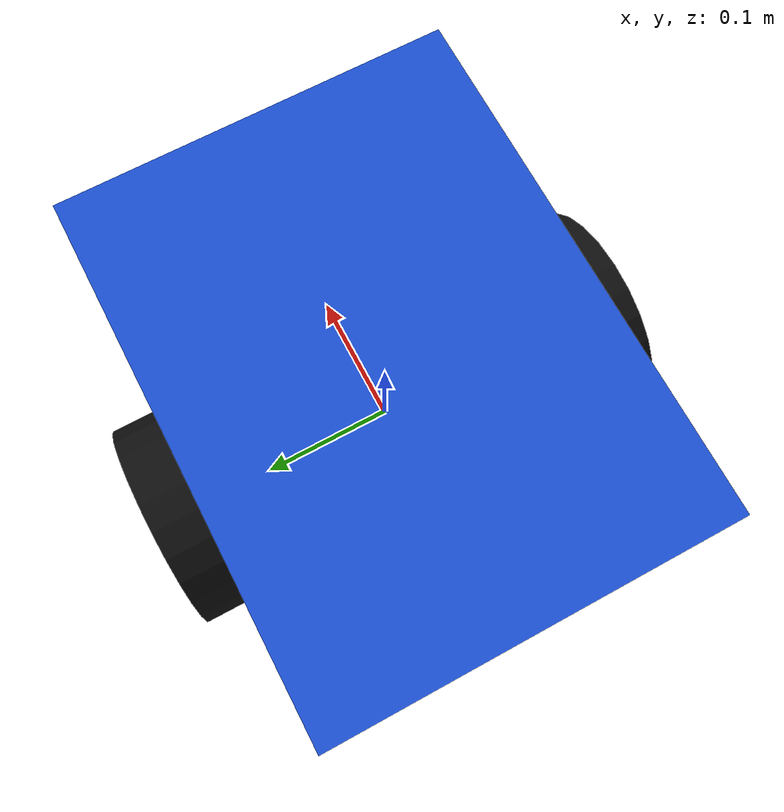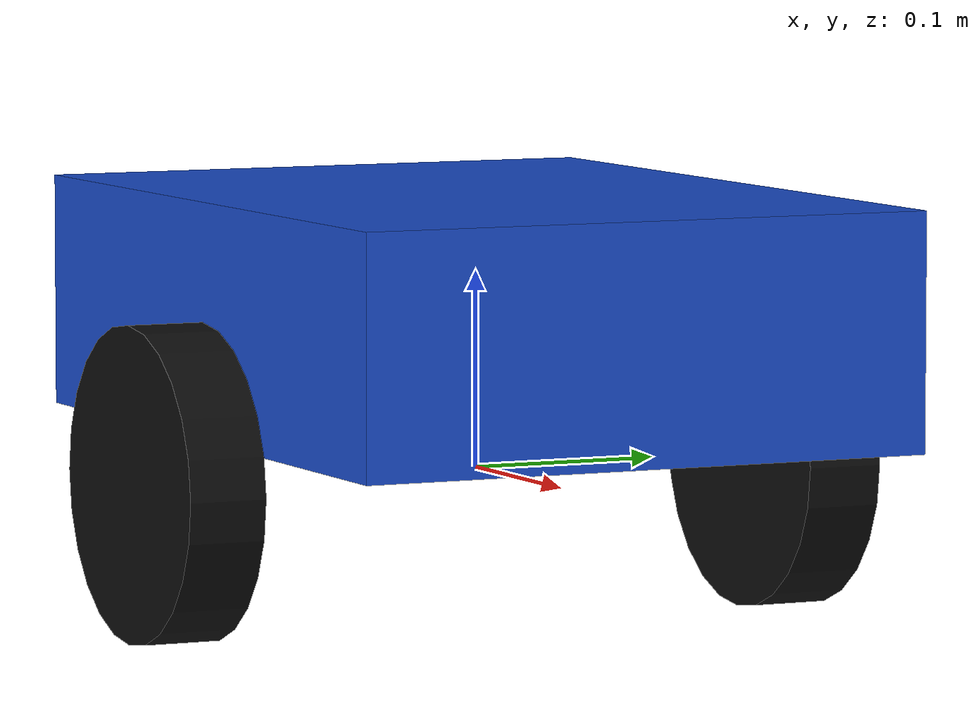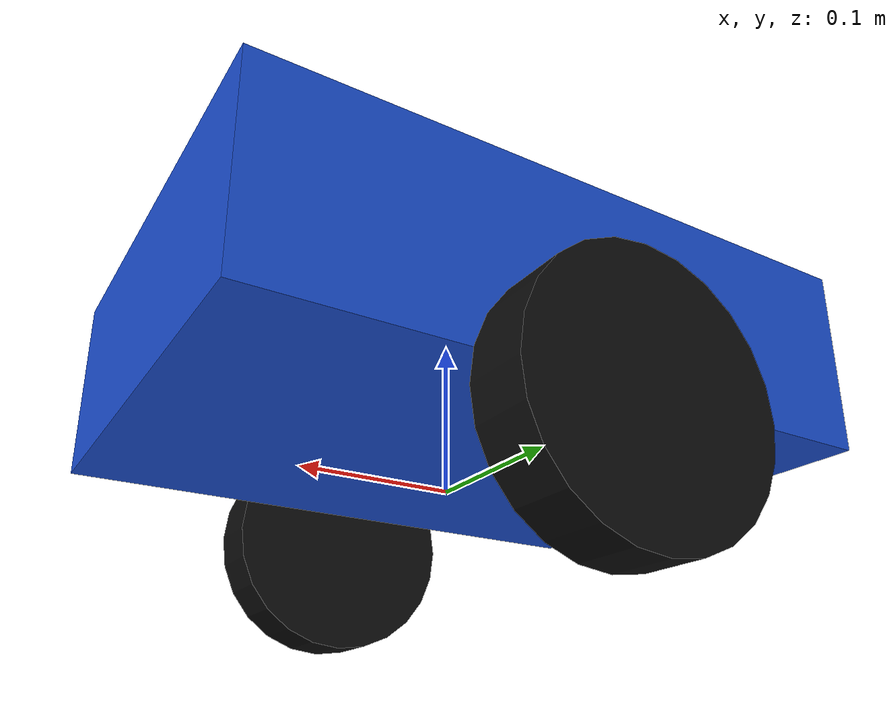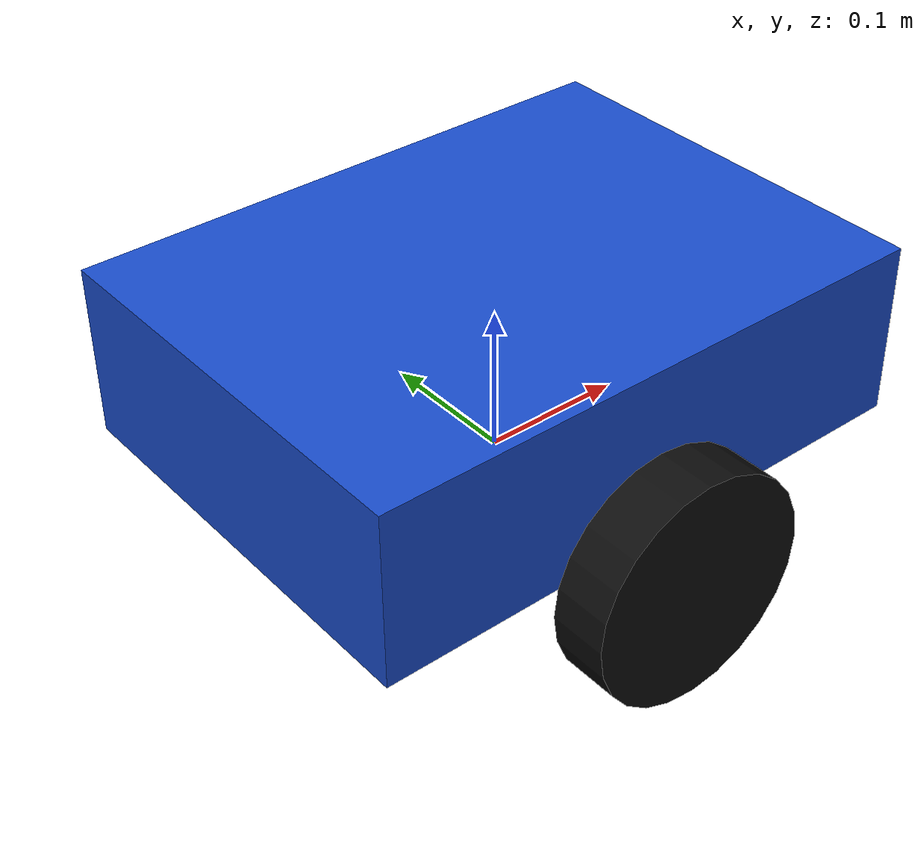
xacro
<?xml version="1.0"?>
<robot xmlns:xacro="http://www.ros.org/wiki/xacro" name="small_robot">

  <xacro:property name="body_length" value="0.40"/>
  <xacro:property name="body_width" value="0.30"/>
  <xacro:property name="body_height" value="0.12"/>
  <xacro:property name="wheel_radius" value="0.08"/>
  <xacro:property name="wheel_width" value="0.04"/>
  <xacro:property name="wheel_separation" value="0.34"/>

  <link name="base_link">
    <visual>
      <origin xyz="0 0 ${wheel_radius}"/>
      <geometry>
        <box size="${body_length} ${body_width} ${body_height}"/>
      </geometry>
      <material name="blue">
        <color rgba="0.1 0.3 0.8 1.0"/>
      </material>
    </visual>

    <collision>
      <origin xyz="0 0 ${wheel_radius}"/>
      <geometry>
        <box size="${body_length} ${body_width} ${body_height}"/>
      </geometry>
    </collision>

    <!-- Placeholder mass properties: visualisation only. -->
    <inertial>
      <mass value="5.0"/>
      <inertia ixx="0.05" ixy="0.0" ixz="0.0"
               iyy="0.08" iyz="0.0" izz="0.10"/>
    </inertial>
  </link>

  <xacro:macro name="wheel" params="name y_position">

    <link name="${name}">
      <visual>
        <origin rpy="${pi/2} 0 0"/>
        <geometry>
          <cylinder radius="${wheel_radius}" length="${wheel_width}"/>
        </geometry>
        <material name="black">
          <color rgba="0.05 0.05 0.05 1.0"/>
        </material>
      </visual>

      <collision>
        <origin rpy="${pi/2} 0 0"/>
        <geometry>
          <cylinder radius="${wheel_radius}" length="${wheel_width}"/>
        </geometry>
      </collision>

      <!-- Placeholder mass properties: visualisation only. -->
      <inertial>
        <mass value="0.5"/>
        <inertia ixx="0.002" ixy="0.0" ixz="0.0"
                 iyy="0.001" iyz="0.0" izz="0.002"/>
      </inertial>
    </link>

    <joint name="${name}_joint" type="continuous">
      <parent link="base_link"/>
      <child link="${name}"/>
      <origin xyz="0 ${y_position} 0"/>
      <axis xyz="0 1 0"/>
    </joint>

  </xacro:macro>

  <xacro:wheel name="left_wheel" y_position="${wheel_separation / 2}"/>
  <xacro:wheel name="right_wheel" y_position="${-wheel_separation / 2}"/>

</robot>
